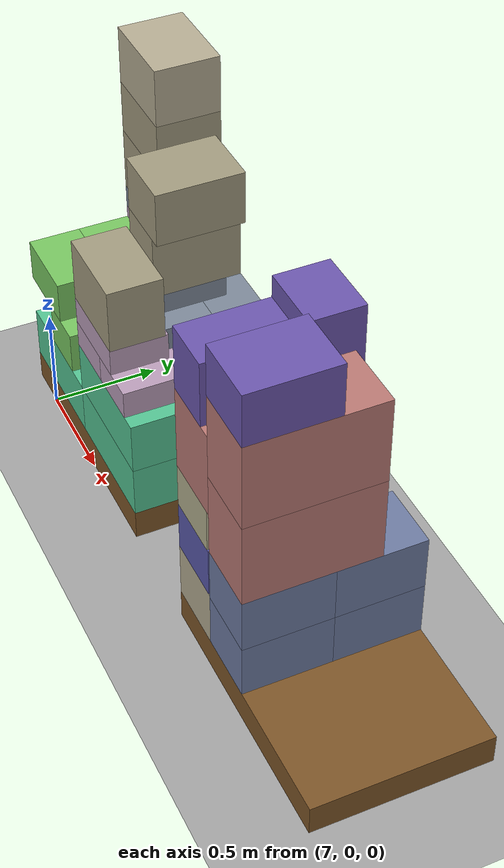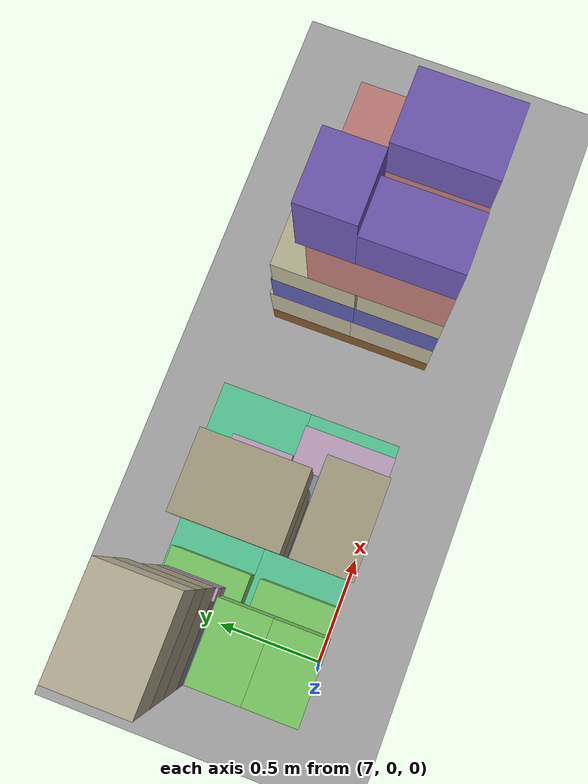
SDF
<sdf version="1.10">
 <world name="pallet_towers">
  <model name="ground_plane">
   <static>true</static>
   <link name="link">
    <collision name="collision">
     <geometry><plane><normal>0 0 1</normal><size>30 30</size></plane></geometry>
     <surface>
      <friction><ode><mu>0.35</mu><mu2>0.35</mu2></ode></friction>
      <bounce><restitution_coefficient>0</restitution_coefficient><threshold>100000</threshold></bounce>
      <contact><ode><kp>1000000</kp><kd>100</kd><max_vel>1</max_vel><min_depth>0.0005</min_depth></ode></contact>
     </surface>
    </collision>
    <visual name="visual">
     <geometry><plane><normal>0 0 1</normal><size>30 30</size></plane></geometry>
     <material><ambient>0.65 0.65 0.65 1</ambient><diffuse>0.65 0.65 0.65 1</diffuse></material>
    </visual>
   </link>
  </model>
  <model name="pallet_05_5">
   <static>false</static>
   <pose>7.4 0.4 0.072 0 0 0</pose>
   <link name="body">
    <inertial>
     <mass>25</mass>
     <inertia>
      <ixx>1.37653333</ixx>
      <ixy>0</ixy>
      <ixz>0</ixz>
      <iyy>3.0432</iyy>
      <iyz>0</iyz>
      <izz>4.33333333</izz>
     </inertia>
    </inertial>
    <collision name="collision">
     <geometry><box><size>1.2 0.8 0.144</size></box></geometry>
     <surface>
      <friction><ode><mu>0.35</mu><mu2>0.35</mu2></ode></friction>
      <bounce><restitution_coefficient>0</restitution_coefficient><threshold>100000</threshold></bounce>
      <contact><ode><kp>1000000</kp><kd>100</kd><max_vel>1</max_vel><min_depth>0.0005</min_depth></ode></contact>
     </surface>
    </collision>
    <visual name="visual">
     <geometry><box><size>1.2 0.8 0.144</size></box></geometry>
     <material>
      <ambient>0.5 0.34 0.16 1</ambient>
      <diffuse>0.5 0.34 0.16 1</diffuse>
      <specular>0.05 0.05 0.05 1</specular>
     </material>
    </visual>
   </link>
  </model>
  <model name="box_p05_0001_DIAPER_001_DIAPER">
   <static>false</static>
   <pose>7.7 0.6 0.269 0 0 0</pose>
   <link name="body">
    <inertial>
     <mass>7</mass>
     <inertia>
      <ixx>0.129791667</ixx>
      <ixy>0</ixy>
      <ixz>0</ixz>
      <iyy>0.246458333</iyy>
      <iyz>0</iyz>
      <izz>0.303333333</izz>
     </inertia>
    </inertial>
    <collision name="collision">
     <geometry><box><size>0.6 0.4 0.25</size></box></geometry>
     <surface>
      <friction><ode><mu>0.35</mu><mu2>0.35</mu2></ode></friction>
      <bounce><restitution_coefficient>0</restitution_coefficient><threshold>100000</threshold></bounce>
      <contact><ode><kp>1000000</kp><kd>100</kd><max_vel>1</max_vel><min_depth>0.0005</min_depth></ode></contact>
     </surface>
    </collision>
    <visual name="visual">
     <geometry><box><size>0.6 0.4 0.25</size></box></geometry>
     <material>
      <ambient>0.337254902 0.780392157 0.584313725 1</ambient>
      <diffuse>0.337254902 0.780392157 0.584313725 1</diffuse>
      <specular>0.05 0.05 0.05 1</specular>
     </material>
    </visual>
   </link>
  </model>
  <model name="box_p05_0002_DIAPER_002_DIAPER">
   <static>false</static>
   <pose>7.7 0.2 0.269 0 0 0</pose>
   <link name="body">
    <inertial>
     <mass>7</mass>
     <inertia>
      <ixx>0.129791667</ixx>
      <ixy>0</ixy>
      <ixz>0</ixz>
      <iyy>0.246458333</iyy>
      <iyz>0</iyz>
      <izz>0.303333333</izz>
     </inertia>
    </inertial>
    <collision name="collision">
     <geometry><box><size>0.6 0.4 0.25</size></box></geometry>
     <surface>
      <friction><ode><mu>0.35</mu><mu2>0.35</mu2></ode></friction>
      <bounce><restitution_coefficient>0</restitution_coefficient><threshold>100000</threshold></bounce>
      <contact><ode><kp>1000000</kp><kd>100</kd><max_vel>1</max_vel><min_depth>0.0005</min_depth></ode></contact>
     </surface>
    </collision>
    <visual name="visual">
     <geometry><box><size>0.6 0.4 0.25</size></box></geometry>
     <material>
      <ambient>0.337254902 0.780392157 0.584313725 1</ambient>
      <diffuse>0.337254902 0.780392157 0.584313725 1</diffuse>
      <specular>0.05 0.05 0.05 1</specular>
     </material>
    </visual>
   </link>
  </model>
  <model name="box_p05_0003_DIAPER_003_DIAPER">
   <static>false</static>
   <pose>7.1 0.6 0.269 0 0 0</pose>
   <link name="body">
    <inertial>
     <mass>7</mass>
     <inertia>
      <ixx>0.129791667</ixx>
      <ixy>0</ixy>
      <ixz>0</ixz>
      <iyy>0.246458333</iyy>
      <iyz>0</iyz>
      <izz>0.303333333</izz>
     </inertia>
    </inertial>
    <collision name="collision">
     <geometry><box><size>0.6 0.4 0.25</size></box></geometry>
     <surface>
      <friction><ode><mu>0.35</mu><mu2>0.35</mu2></ode></friction>
      <bounce><restitution_coefficient>0</restitution_coefficient><threshold>100000</threshold></bounce>
      <contact><ode><kp>1000000</kp><kd>100</kd><max_vel>1</max_vel><min_depth>0.0005</min_depth></ode></contact>
     </surface>
    </collision>
    <visual name="visual">
     <geometry><box><size>0.6 0.4 0.25</size></box></geometry>
     <material>
      <ambient>0.337254902 0.780392157 0.584313725 1</ambient>
      <diffuse>0.337254902 0.780392157 0.584313725 1</diffuse>
      <specular>0.05 0.05 0.05 1</specular>
     </material>
    </visual>
   </link>
  </model>
  <model name="box_p05_0004_DIAPER_004_DIAPER">
   <static>false</static>
   <pose>7.1 0.2 0.269 0 0 0</pose>
   <link name="body">
    <inertial>
     <mass>7</mass>
     <inertia>
      <ixx>0.129791667</ixx>
      <ixy>0</ixy>
      <ixz>0</ixz>
      <iyy>0.246458333</iyy>
      <iyz>0</iyz>
      <izz>0.303333333</izz>
     </inertia>
    </inertial>
    <collision name="collision">
     <geometry><box><size>0.6 0.4 0.25</size></box></geometry>
     <surface>
      <friction><ode><mu>0.35</mu><mu2>0.35</mu2></ode></friction>
      <bounce><restitution_coefficient>0</restitution_coefficient><threshold>100000</threshold></bounce>
      <contact><ode><kp>1000000</kp><kd>100</kd><max_vel>1</max_vel><min_depth>0.0005</min_depth></ode></contact>
     </surface>
    </collision>
    <visual name="visual">
     <geometry><box><size>0.6 0.4 0.25</size></box></geometry>
     <material>
      <ambient>0.337254902 0.780392157 0.584313725 1</ambient>
      <diffuse>0.337254902 0.780392157 0.584313725 1</diffuse>
      <specular>0.05 0.05 0.05 1</specular>
     </material>
    </visual>
   </link>
  </model>
  <model name="box_p05_0005_DIAPER_005_DIAPER">
   <static>false</static>
   <pose>7.7 0.6 0.519 0 0 0</pose>
   <link name="body">
    <inertial>
     <mass>7</mass>
     <inertia>
      <ixx>0.129791667</ixx>
      <ixy>0</ixy>
      <ixz>0</ixz>
      <iyy>0.246458333</iyy>
      <iyz>0</iyz>
      <izz>0.303333333</izz>
     </inertia>
    </inertial>
    <collision name="collision">
     <geometry><box><size>0.6 0.4 0.25</size></box></geometry>
     <surface>
      <friction><ode><mu>0.35</mu><mu2>0.35</mu2></ode></friction>
      <bounce><restitution_coefficient>0</restitution_coefficient><threshold>100000</threshold></bounce>
      <contact><ode><kp>1000000</kp><kd>100</kd><max_vel>1</max_vel><min_depth>0.0005</min_depth></ode></contact>
     </surface>
    </collision>
    <visual name="visual">
     <geometry><box><size>0.6 0.4 0.25</size></box></geometry>
     <material>
      <ambient>0.337254902 0.780392157 0.584313725 1</ambient>
      <diffuse>0.337254902 0.780392157 0.584313725 1</diffuse>
      <specular>0.05 0.05 0.05 1</specular>
     </material>
    </visual>
   </link>
  </model>
  <model name="box_p05_0006_DIAPER_006_DIAPER">
   <static>false</static>
   <pose>7.7 0.2 0.519 0 0 0</pose>
   <link name="body">
    <inertial>
     <mass>7</mass>
     <inertia>
      <ixx>0.129791667</ixx>
      <ixy>0</ixy>
      <ixz>0</ixz>
      <iyy>0.246458333</iyy>
      <iyz>0</iyz>
      <izz>0.303333333</izz>
     </inertia>
    </inertial>
    <collision name="collision">
     <geometry><box><size>0.6 0.4 0.25</size></box></geometry>
     <surface>
      <friction><ode><mu>0.35</mu><mu2>0.35</mu2></ode></friction>
      <bounce><restitution_coefficient>0</restitution_coefficient><threshold>100000</threshold></bounce>
      <contact><ode><kp>1000000</kp><kd>100</kd><max_vel>1</max_vel><min_depth>0.0005</min_depth></ode></contact>
     </surface>
    </collision>
    <visual name="visual">
     <geometry><box><size>0.6 0.4 0.25</size></box></geometry>
     <material>
      <ambient>0.337254902 0.780392157 0.584313725 1</ambient>
      <diffuse>0.337254902 0.780392157 0.584313725 1</diffuse>
      <specular>0.05 0.05 0.05 1</specular>
     </material>
    </visual>
   </link>
  </model>
  <model name="box_p05_0008_TEA_002_TEA">
   <static>false</static>
   <pose>7.16 0.58 0.494 0 0 0</pose>
   <link name="body">
    <inertial>
     <mass>5</mass>
     <inertia>
      <ixx>0.0706666667</ixx>
      <ixy>0</ixy>
      <ixz>0</ixz>
      <iyy>0.0406666667</iyy>
      <iyz>0</iyz>
      <izz>0.078</izz>
     </inertia>
    </inertial>
    <collision name="collision">
     <geometry><box><size>0.24 0.36 0.2</size></box></geometry>
     <surface>
      <friction><ode><mu>0.35</mu><mu2>0.35</mu2></ode></friction>
      <bounce><restitution_coefficient>0</restitution_coefficient><threshold>100000</threshold></bounce>
      <contact><ode><kp>1000000</kp><kd>100</kd><max_vel>1</max_vel><min_depth>0.0005</min_depth></ode></contact>
     </surface>
    </collision>
    <visual name="visual">
     <geometry><box><size>0.24 0.36 0.2</size></box></geometry>
     <material>
      <ambient>0.478431373 0.788235294 0.388235294 1</ambient>
      <diffuse>0.478431373 0.788235294 0.388235294 1</diffuse>
      <specular>0.05 0.05 0.05 1</specular>
     </material>
    </visual>
   </link>
  </model>
  <model name="box_p05_0010_TEA_004_TEA">
   <static>false</static>
   <pose>7.16 0.18 0.494 0 0 0</pose>
   <link name="body">
    <inertial>
     <mass>5</mass>
     <inertia>
      <ixx>0.0706666667</ixx>
      <ixy>0</ixy>
      <ixz>0</ixz>
      <iyy>0.0406666667</iyy>
      <iyz>0</iyz>
      <izz>0.078</izz>
     </inertia>
    </inertial>
    <collision name="collision">
     <geometry><box><size>0.24 0.36 0.2</size></box></geometry>
     <surface>
      <friction><ode><mu>0.35</mu><mu2>0.35</mu2></ode></friction>
      <bounce><restitution_coefficient>0</restitution_coefficient><threshold>100000</threshold></bounce>
      <contact><ode><kp>1000000</kp><kd>100</kd><max_vel>1</max_vel><min_depth>0.0005</min_depth></ode></contact>
     </surface>
    </collision>
    <visual name="visual">
     <geometry><box><size>0.24 0.36 0.2</size></box></geometry>
     <material>
      <ambient>0.478431373 0.788235294 0.388235294 1</ambient>
      <diffuse>0.478431373 0.788235294 0.388235294 1</diffuse>
      <specular>0.05 0.05 0.05 1</specular>
     </material>
    </visual>
   </link>
  </model>
  <model name="box_p05_0011_TEA_005_TEA">
   <static>false</static>
   <pose>6.98 0.12 0.694 0 0 0</pose>
   <link name="body">
    <inertial>
     <mass>5</mass>
     <inertia>
      <ixx>0.0406666667</ixx>
      <ixy>0</ixy>
      <ixz>0</ixz>
      <iyy>0.0706666667</iyy>
      <iyz>0</iyz>
      <izz>0.078</izz>
     </inertia>
    </inertial>
    <collision name="collision">
     <geometry><box><size>0.36 0.24 0.2</size></box></geometry>
     <surface>
      <friction><ode><mu>0.35</mu><mu2>0.35</mu2></ode></friction>
      <bounce><restitution_coefficient>0</restitution_coefficient><threshold>100000</threshold></bounce>
      <contact><ode><kp>1000000</kp><kd>100</kd><max_vel>1</max_vel><min_depth>0.0005</min_depth></ode></contact>
     </surface>
    </collision>
    <visual name="visual">
     <geometry><box><size>0.36 0.24 0.2</size></box></geometry>
     <material>
      <ambient>0.478431373 0.788235294 0.388235294 1</ambient>
      <diffuse>0.478431373 0.788235294 0.388235294 1</diffuse>
      <specular>0.05 0.05 0.05 1</specular>
     </material>
    </visual>
   </link>
  </model>
  <model name="box_p05_0012_TEA_006_TEA">
   <static>false</static>
   <pose>6.98 0.36 0.694 0 0 0</pose>
   <link name="body">
    <inertial>
     <mass>5</mass>
     <inertia>
      <ixx>0.0406666667</ixx>
      <ixy>0</ixy>
      <ixz>0</ixz>
      <iyy>0.0706666667</iyy>
      <iyz>0</iyz>
      <izz>0.078</izz>
     </inertia>
    </inertial>
    <collision name="collision">
     <geometry><box><size>0.36 0.24 0.2</size></box></geometry>
     <surface>
      <friction><ode><mu>0.35</mu><mu2>0.35</mu2></ode></friction>
      <bounce><restitution_coefficient>0</restitution_coefficient><threshold>100000</threshold></bounce>
      <contact><ode><kp>1000000</kp><kd>100</kd><max_vel>1</max_vel><min_depth>0.0005</min_depth></ode></contact>
     </surface>
    </collision>
    <visual name="visual">
     <geometry><box><size>0.36 0.24 0.2</size></box></geometry>
     <material>
      <ambient>0.478431373 0.788235294 0.388235294 1</ambient>
      <diffuse>0.478431373 0.788235294 0.388235294 1</diffuse>
      <specular>0.05 0.05 0.05 1</specular>
     </material>
    </visual>
   </link>
  </model>
  <model name="box_p05_0013_BEER24_001_BEER24">
   <static>false</static>
   <pose>6.9975 0.6125 0.659 0 0 0</pose>
   <link name="body">
    <inertial>
     <mass>9</mass>
     <inertia>
      <ixx>0.06534375</ixx>
      <ixy>0</ixy>
      <ixz>0</ixz>
      <iyy>0.12969375</iyy>
      <iyz>0</iyz>
      <izz>0.1696875</izz>
     </inertia>
    </inertial>
    <collision name="collision">
     <geometry><box><size>0.395 0.265 0.13</size></box></geometry>
     <surface>
      <friction><ode><mu>0.35</mu><mu2>0.35</mu2></ode></friction>
      <bounce><restitution_coefficient>0</restitution_coefficient><threshold>100000</threshold></bounce>
      <contact><ode><kp>1000000</kp><kd>100</kd><max_vel>1</max_vel><min_depth>0.0005</min_depth></ode></contact>
     </surface>
    </collision>
    <visual name="visual">
     <geometry><box><size>0.395 0.265 0.13</size></box></geometry>
     <material>
      <ambient>0.741176471 0.62745098 0.737254902 1</ambient>
      <diffuse>0.741176471 0.62745098 0.737254902 1</diffuse>
      <specular>0.05 0.05 0.05 1</specular>
     </material>
    </visual>
   </link>
  </model>
  <model name="box_p05_0014_BEER24_002_BEER24">
   <static>false</static>
   <pose>7.5325 0.1975 0.709 0 0 0</pose>
   <link name="body">
    <inertial>
     <mass>9</mass>
     <inertia>
      <ixx>0.12969375</ixx>
      <ixy>0</ixy>
      <ixz>0</ixz>
      <iyy>0.06534375</iyy>
      <iyz>0</iyz>
      <izz>0.1696875</izz>
     </inertia>
    </inertial>
    <collision name="collision">
     <geometry><box><size>0.265 0.395 0.13</size></box></geometry>
     <surface>
      <friction><ode><mu>0.35</mu><mu2>0.35</mu2></ode></friction>
      <bounce><restitution_coefficient>0</restitution_coefficient><threshold>100000</threshold></bounce>
      <contact><ode><kp>1000000</kp><kd>100</kd><max_vel>1</max_vel><min_depth>0.0005</min_depth></ode></contact>
     </surface>
    </collision>
    <visual name="visual">
     <geometry><box><size>0.265 0.395 0.13</size></box></geometry>
     <material>
      <ambient>0.741176471 0.62745098 0.737254902 1</ambient>
      <diffuse>0.741176471 0.62745098 0.737254902 1</diffuse>
      <specular>0.05 0.05 0.05 1</specular>
     </material>
    </visual>
   </link>
  </model>
  <model name="box_p05_0015_BEER24_003_BEER24">
   <static>false</static>
   <pose>7.7975 0.1975 0.709 0 0 0</pose>
   <link name="body">
    <inertial>
     <mass>9</mass>
     <inertia>
      <ixx>0.12969375</ixx>
      <ixy>0</ixy>
      <ixz>0</ixz>
      <iyy>0.06534375</iyy>
      <iyz>0</iyz>
      <izz>0.1696875</izz>
     </inertia>
    </inertial>
    <collision name="collision">
     <geometry><box><size>0.265 0.395 0.13</size></box></geometry>
     <surface>
      <friction><ode><mu>0.35</mu><mu2>0.35</mu2></ode></friction>
      <bounce><restitution_coefficient>0</restitution_coefficient><threshold>100000</threshold></bounce>
      <contact><ode><kp>1000000</kp><kd>100</kd><max_vel>1</max_vel><min_depth>0.0005</min_depth></ode></contact>
     </surface>
    </collision>
    <visual name="visual">
     <geometry><box><size>0.265 0.395 0.13</size></box></geometry>
     <material>
      <ambient>0.741176471 0.62745098 0.737254902 1</ambient>
      <diffuse>0.741176471 0.62745098 0.737254902 1</diffuse>
      <specular>0.05 0.05 0.05 1</specular>
     </material>
    </visual>
   </link>
  </model>
  <model name="box_p05_0016_BEER24_004_BEER24">
   <static>false</static>
   <pose>7.5975 0.5325 0.709 0 0 0</pose>
   <link name="body">
    <inertial>
     <mass>9</mass>
     <inertia>
      <ixx>0.06534375</ixx>
      <ixy>0</ixy>
      <ixz>0</ixz>
      <iyy>0.12969375</iyy>
      <iyz>0</iyz>
      <izz>0.1696875</izz>
     </inertia>
    </inertial>
    <collision name="collision">
     <geometry><box><size>0.395 0.265 0.13</size></box></geometry>
     <surface>
      <friction><ode><mu>0.35</mu><mu2>0.35</mu2></ode></friction>
      <bounce><restitution_coefficient>0</restitution_coefficient><threshold>100000</threshold></bounce>
      <contact><ode><kp>1000000</kp><kd>100</kd><max_vel>1</max_vel><min_depth>0.0005</min_depth></ode></contact>
     </surface>
    </collision>
    <visual name="visual">
     <geometry><box><size>0.395 0.265 0.13</size></box></geometry>
     <material>
      <ambient>0.741176471 0.62745098 0.737254902 1</ambient>
      <diffuse>0.741176471 0.62745098 0.737254902 1</diffuse>
      <specular>0.05 0.05 0.05 1</specular>
     </material>
    </visual>
   </link>
  </model>
  <model name="box_p05_0017_BEER24_005_BEER24">
   <static>false</static>
   <pose>6.9975 0.6125 0.789 0 0 0</pose>
   <link name="body">
    <inertial>
     <mass>9</mass>
     <inertia>
      <ixx>0.06534375</ixx>
      <ixy>0</ixy>
      <ixz>0</ixz>
      <iyy>0.12969375</iyy>
      <iyz>0</iyz>
      <izz>0.1696875</izz>
     </inertia>
    </inertial>
    <collision name="collision">
     <geometry><box><size>0.395 0.265 0.13</size></box></geometry>
     <surface>
      <friction><ode><mu>0.35</mu><mu2>0.35</mu2></ode></friction>
      <bounce><restitution_coefficient>0</restitution_coefficient><threshold>100000</threshold></bounce>
      <contact><ode><kp>1000000</kp><kd>100</kd><max_vel>1</max_vel><min_depth>0.0005</min_depth></ode></contact>
     </surface>
    </collision>
    <visual name="visual">
     <geometry><box><size>0.395 0.265 0.13</size></box></geometry>
     <material>
      <ambient>0.741176471 0.62745098 0.737254902 1</ambient>
      <diffuse>0.741176471 0.62745098 0.737254902 1</diffuse>
      <specular>0.05 0.05 0.05 1</specular>
     </material>
    </visual>
   </link>
  </model>
  <model name="box_p05_0018_BEER24_006_BEER24">
   <static>false</static>
   <pose>7.5975 0.1325 0.839 0 0 0</pose>
   <link name="body">
    <inertial>
     <mass>9</mass>
     <inertia>
      <ixx>0.06534375</ixx>
      <ixy>0</ixy>
      <ixz>0</ixz>
      <iyy>0.12969375</iyy>
      <iyz>0</iyz>
      <izz>0.1696875</izz>
     </inertia>
    </inertial>
    <collision name="collision">
     <geometry><box><size>0.395 0.265 0.13</size></box></geometry>
     <surface>
      <friction><ode><mu>0.35</mu><mu2>0.35</mu2></ode></friction>
      <bounce><restitution_coefficient>0</restitution_coefficient><threshold>100000</threshold></bounce>
      <contact><ode><kp>1000000</kp><kd>100</kd><max_vel>1</max_vel><min_depth>0.0005</min_depth></ode></contact>
     </surface>
    </collision>
    <visual name="visual">
     <geometry><box><size>0.395 0.265 0.13</size></box></geometry>
     <material>
      <ambient>0.741176471 0.62745098 0.737254902 1</ambient>
      <diffuse>0.741176471 0.62745098 0.737254902 1</diffuse>
      <specular>0.05 0.05 0.05 1</specular>
     </material>
    </visual>
   </link>
  </model>
  <model name="box_p05_0020_DOGFOOD_002_DOGFOOD">
   <static>false</static>
   <pose>7.57 0.38 0.829 0 0 0</pose>
   <link name="body">
    <inertial>
     <mass>8</mass>
     <inertia>
      <ixx>0.0433333333</ixx>
      <ixy>0</ixy>
      <ixz>0</ixz>
      <iyy>0.0851333333</iyy>
      <iyz>0</iyz>
      <izz>0.112333333</izz>
     </inertia>
    </inertial>
    <collision name="collision">
     <geometry><box><size>0.34 0.23 0.11</size></box></geometry>
     <surface>
      <friction><ode><mu>0.35</mu><mu2>0.35</mu2></ode></friction>
      <bounce><restitution_coefficient>0</restitution_coefficient><threshold>100000</threshold></bounce>
      <contact><ode><kp>1000000</kp><kd>100</kd><max_vel>1</max_vel><min_depth>0.0005</min_depth></ode></contact>
     </surface>
    </collision>
    <visual name="visual">
     <geometry><box><size>0.34 0.23 0.11</size></box></geometry>
     <material>
      <ambient>0.498039216 0.545098039 0.607843137 1</ambient>
      <diffuse>0.498039216 0.545098039 0.607843137 1</diffuse>
      <specular>0.05 0.05 0.05 1</specular>
     </material>
    </visual>
   </link>
  </model>
  <model name="box_p05_0021_DOGFOOD_003_DOGFOOD">
   <static>false</static>
   <pose>7.57 0.61 0.829 0 0 0</pose>
   <link name="body">
    <inertial>
     <mass>8</mass>
     <inertia>
      <ixx>0.0433333333</ixx>
      <ixy>0</ixy>
      <ixz>0</ixz>
      <iyy>0.0851333333</iyy>
      <iyz>0</iyz>
      <izz>0.112333333</izz>
     </inertia>
    </inertial>
    <collision name="collision">
     <geometry><box><size>0.34 0.23 0.11</size></box></geometry>
     <surface>
      <friction><ode><mu>0.35</mu><mu2>0.35</mu2></ode></friction>
      <bounce><restitution_coefficient>0</restitution_coefficient><threshold>100000</threshold></bounce>
      <contact><ode><kp>1000000</kp><kd>100</kd><max_vel>1</max_vel><min_depth>0.0005</min_depth></ode></contact>
     </surface>
    </collision>
    <visual name="visual">
     <geometry><box><size>0.34 0.23 0.11</size></box></geometry>
     <material>
      <ambient>0.498039216 0.545098039 0.607843137 1</ambient>
      <diffuse>0.498039216 0.545098039 0.607843137 1</diffuse>
      <specular>0.05 0.05 0.05 1</specular>
     </material>
    </visual>
   </link>
  </model>
  <model name="box_p05_0022_DOGFOOD_004_DOGFOOD">
   <static>false</static>
   <pose>6.97 0.595 0.909 0 0 0</pose>
   <link name="body">
    <inertial>
     <mass>8</mass>
     <inertia>
      <ixx>0.0433333333</ixx>
      <ixy>0</ixy>
      <ixz>0</ixz>
      <iyy>0.0851333333</iyy>
      <iyz>0</iyz>
      <izz>0.112333333</izz>
     </inertia>
    </inertial>
    <collision name="collision">
     <geometry><box><size>0.34 0.23 0.11</size></box></geometry>
     <surface>
      <friction><ode><mu>0.35</mu><mu2>0.35</mu2></ode></friction>
      <bounce><restitution_coefficient>0</restitution_coefficient><threshold>100000</threshold></bounce>
      <contact><ode><kp>1000000</kp><kd>100</kd><max_vel>1</max_vel><min_depth>0.0005</min_depth></ode></contact>
     </surface>
    </collision>
    <visual name="visual">
     <geometry><box><size>0.34 0.23 0.11</size></box></geometry>
     <material>
      <ambient>0.498039216 0.545098039 0.607843137 1</ambient>
      <diffuse>0.498039216 0.545098039 0.607843137 1</diffuse>
      <specular>0.05 0.05 0.05 1</specular>
     </material>
    </visual>
   </link>
  </model>
  <model name="box_p05_0023_DOGFOOD_005_DOGFOOD">
   <static>false</static>
   <pose>7.515 0.435 0.939 0 0 0</pose>
   <link name="body">
    <inertial>
     <mass>8</mass>
     <inertia>
      <ixx>0.0851333333</ixx>
      <ixy>0</ixy>
      <ixz>0</ixz>
      <iyy>0.0433333333</iyy>
      <iyz>0</iyz>
      <izz>0.112333333</izz>
     </inertia>
    </inertial>
    <collision name="collision">
     <geometry><box><size>0.23 0.34 0.11</size></box></geometry>
     <surface>
      <friction><ode><mu>0.35</mu><mu2>0.35</mu2></ode></friction>
      <bounce><restitution_coefficient>0</restitution_coefficient><threshold>100000</threshold></bounce>
      <contact><ode><kp>1000000</kp><kd>100</kd><max_vel>1</max_vel><min_depth>0.0005</min_depth></ode></contact>
     </surface>
    </collision>
    <visual name="visual">
     <geometry><box><size>0.23 0.34 0.11</size></box></geometry>
     <material>
      <ambient>0.498039216 0.545098039 0.607843137 1</ambient>
      <diffuse>0.498039216 0.545098039 0.607843137 1</diffuse>
      <specular>0.05 0.05 0.05 1</specular>
     </material>
    </visual>
   </link>
  </model>
  <model name="box_p05_0025_MILK12_001_MILK12">
   <static>false</static>
   <pose>7.6 0.125 1.054 0 0 0</pose>
   <link name="body">
    <inertial>
     <mass>12.5</mass>
     <inertia>
      <ixx>0.158854167</ixx>
      <ixy>0</ixy>
      <ixz>0</ixz>
      <iyy>0.260416667</iyy>
      <iyz>0</iyz>
      <izz>0.231770833</izz>
     </inertia>
    </inertial>
    <collision name="collision">
     <geometry><box><size>0.4 0.25 0.3</size></box></geometry>
     <surface>
      <friction><ode><mu>0.35</mu><mu2>0.35</mu2></ode></friction>
      <bounce><restitution_coefficient>0</restitution_coefficient><threshold>100000</threshold></bounce>
      <contact><ode><kp>1000000</kp><kd>100</kd><max_vel>1</max_vel><min_depth>0.0005</min_depth></ode></contact>
     </surface>
    </collision>
    <visual name="visual">
     <geometry><box><size>0.4 0.25 0.3</size></box></geometry>
     <material>
      <ambient>0.647058824 0.615686275 0.505882353 1</ambient>
      <diffuse>0.647058824 0.615686275 0.505882353 1</diffuse>
      <specular>0.05 0.05 0.05 1</specular>
     </material>
    </visual>
   </link>
  </model>
  <model name="box_p05_0026_MILK12_002_MILK12">
   <static>false</static>
   <pose>7 0.605 1.114 0 0 0</pose>
   <link name="body">
    <inertial>
     <mass>12.5</mass>
     <inertia>
      <ixx>0.158854167</ixx>
      <ixy>0</ixy>
      <ixz>0</ixz>
      <iyy>0.260416667</iyy>
      <iyz>0</iyz>
      <izz>0.231770833</izz>
     </inertia>
    </inertial>
    <collision name="collision">
     <geometry><box><size>0.4 0.25 0.3</size></box></geometry>
     <surface>
      <friction><ode><mu>0.35</mu><mu2>0.35</mu2></ode></friction>
      <bounce><restitution_coefficient>0</restitution_coefficient><threshold>100000</threshold></bounce>
      <contact><ode><kp>1000000</kp><kd>100</kd><max_vel>1</max_vel><min_depth>0.0005</min_depth></ode></contact>
     </surface>
    </collision>
    <visual name="visual">
     <geometry><box><size>0.4 0.25 0.3</size></box></geometry>
     <material>
      <ambient>0.647058824 0.615686275 0.505882353 1</ambient>
      <diffuse>0.647058824 0.615686275 0.505882353 1</diffuse>
      <specular>0.05 0.05 0.05 1</specular>
     </material>
    </visual>
   </link>
  </model>
  <model name="box_p05_0027_MILK12_003_MILK12">
   <static>false</static>
   <pose>7.525 0.465 1.144 0 0 0</pose>
   <link name="body">
    <inertial>
     <mass>12.5</mass>
     <inertia>
      <ixx>0.260416667</ixx>
      <ixy>0</ixy>
      <ixz>0</ixz>
      <iyy>0.158854167</iyy>
      <iyz>0</iyz>
      <izz>0.231770833</izz>
     </inertia>
    </inertial>
    <collision name="collision">
     <geometry><box><size>0.25 0.4 0.3</size></box></geometry>
     <surface>
      <friction><ode><mu>0.35</mu><mu2>0.35</mu2></ode></friction>
      <bounce><restitution_coefficient>0</restitution_coefficient><threshold>100000</threshold></bounce>
      <contact><ode><kp>1000000</kp><kd>100</kd><max_vel>1</max_vel><min_depth>0.0005</min_depth></ode></contact>
     </surface>
    </collision>
    <visual name="visual">
     <geometry><box><size>0.25 0.4 0.3</size></box></geometry>
     <material>
      <ambient>0.647058824 0.615686275 0.505882353 1</ambient>
      <diffuse>0.647058824 0.615686275 0.505882353 1</diffuse>
      <specular>0.05 0.05 0.05 1</specular>
     </material>
    </visual>
   </link>
  </model>
  <model name="box_p05_0029_MILK12_005_MILK12">
   <static>false</static>
   <pose>7 0.63 1.389 0 0 0</pose>
   <link name="body">
    <inertial>
     <mass>12.5</mass>
     <inertia>
      <ixx>0.158854167</ixx>
      <ixy>0</ixy>
      <ixz>0</ixz>
      <iyy>0.231770833</iyy>
      <iyz>0</iyz>
      <izz>0.260416667</izz>
     </inertia>
    </inertial>
    <collision name="collision">
     <geometry><box><size>0.4 0.3 0.25</size></box></geometry>
     <surface>
      <friction><ode><mu>0.35</mu><mu2>0.35</mu2></ode></friction>
      <bounce><restitution_coefficient>0</restitution_coefficient><threshold>100000</threshold></bounce>
      <contact><ode><kp>1000000</kp><kd>100</kd><max_vel>1</max_vel><min_depth>0.0005</min_depth></ode></contact>
     </surface>
    </collision>
    <visual name="visual">
     <geometry><box><size>0.4 0.3 0.25</size></box></geometry>
     <material>
      <ambient>0.647058824 0.615686275 0.505882353 1</ambient>
      <diffuse>0.647058824 0.615686275 0.505882353 1</diffuse>
      <specular>0.05 0.05 0.05 1</specular>
     </material>
    </visual>
   </link>
  </model>
  <model name="box_p05_0030_MILK12_006_MILK12">
   <static>false</static>
   <pose>7.55 0.465 1.419 0 0 0</pose>
   <link name="body">
    <inertial>
     <mass>12.5</mass>
     <inertia>
      <ixx>0.231770833</ixx>
      <ixy>0</ixy>
      <ixz>0</ixz>
      <iyy>0.158854167</iyy>
      <iyz>0</iyz>
      <izz>0.260416667</izz>
     </inertia>
    </inertial>
    <collision name="collision">
     <geometry><box><size>0.3 0.4 0.25</size></box></geometry>
     <surface>
      <friction><ode><mu>0.35</mu><mu2>0.35</mu2></ode></friction>
      <bounce><restitution_coefficient>0</restitution_coefficient><threshold>100000</threshold></bounce>
      <contact><ode><kp>1000000</kp><kd>100</kd><max_vel>1</max_vel><min_depth>0.0005</min_depth></ode></contact>
     </surface>
    </collision>
    <visual name="visual">
     <geometry><box><size>0.3 0.4 0.25</size></box></geometry>
     <material>
      <ambient>0.647058824 0.615686275 0.505882353 1</ambient>
      <diffuse>0.647058824 0.615686275 0.505882353 1</diffuse>
      <specular>0.05 0.05 0.05 1</specular>
     </material>
    </visual>
   </link>
  </model>
  <model name="box_p05_0032_WATER24_002_WATER24">
   <static>false</static>
   <pose>7 0.63 1.649 0 0 0</pose>
   <link name="body">
    <inertial>
     <mass>13</mass>
     <inertia>
      <ixx>0.176475</ixx>
      <ixy>0</ixy>
      <ixz>0</ixz>
      <iyy>0.252308333</iyy>
      <iyz>0</iyz>
      <izz>0.270833333</izz>
     </inertia>
    </inertial>
    <collision name="collision">
     <geometry><box><size>0.4 0.3 0.27</size></box></geometry>
     <surface>
      <friction><ode><mu>0.35</mu><mu2>0.35</mu2></ode></friction>
      <bounce><restitution_coefficient>0</restitution_coefficient><threshold>100000</threshold></bounce>
      <contact><ode><kp>1000000</kp><kd>100</kd><max_vel>1</max_vel><min_depth>0.0005</min_depth></ode></contact>
     </surface>
    </collision>
    <visual name="visual">
     <geometry><box><size>0.4 0.3 0.27</size></box></geometry>
     <material>
      <ambient>0.721568627 0.68627451 0.584313725 1</ambient>
      <diffuse>0.721568627 0.68627451 0.584313725 1</diffuse>
      <specular>0.05 0.05 0.05 1</specular>
     </material>
    </visual>
   </link>
  </model>
  <model name="pallet_06_6">
   <static>false</static>
   <pose>9.1 0.4 0.072 0 0 0</pose>
   <link name="body">
    <inertial>
     <mass>25</mass>
     <inertia>
      <ixx>1.37653333</ixx>
      <ixy>0</ixy>
      <ixz>0</ixz>
      <iyy>3.0432</iyy>
      <iyz>0</iyz>
      <izz>4.33333333</izz>
     </inertia>
    </inertial>
    <collision name="collision">
     <geometry><box><size>1.2 0.8 0.144</size></box></geometry>
     <surface>
      <friction><ode><mu>0.35</mu><mu2>0.35</mu2></ode></friction>
      <bounce><restitution_coefficient>0</restitution_coefficient><threshold>100000</threshold></bounce>
      <contact><ode><kp>1000000</kp><kd>100</kd><max_vel>1</max_vel><min_depth>0.0005</min_depth></ode></contact>
     </surface>
    </collision>
    <visual name="visual">
     <geometry><box><size>1.2 0.8 0.144</size></box></geometry>
     <material>
      <ambient>0.5 0.34 0.16 1</ambient>
      <diffuse>0.5 0.34 0.16 1</diffuse>
      <specular>0.05 0.05 0.05 1</specular>
     </material>
    </visual>
   </link>
  </model>
  <model name="box_p06_0003_WATER24_005_WATER24">
   <static>false</static>
   <pose>8.65 0.6 0.279 0 0 0</pose>
   <link name="body">
    <inertial>
     <mass>13</mass>
     <inertia>
      <ixx>0.252308333</ixx>
      <ixy>0</ixy>
      <ixz>0</ixz>
      <iyy>0.176475</iyy>
      <iyz>0</iyz>
      <izz>0.270833333</izz>
     </inertia>
    </inertial>
    <collision name="collision">
     <geometry><box><size>0.3 0.4 0.27</size></box></geometry>
     <surface>
      <friction><ode><mu>0.35</mu><mu2>0.35</mu2></ode></friction>
      <bounce><restitution_coefficient>0</restitution_coefficient><threshold>100000</threshold></bounce>
      <contact><ode><kp>1000000</kp><kd>100</kd><max_vel>1</max_vel><min_depth>0.0005</min_depth></ode></contact>
     </surface>
    </collision>
    <visual name="visual">
     <geometry><box><size>0.3 0.4 0.27</size></box></geometry>
     <material>
      <ambient>0.721568627 0.68627451 0.584313725 1</ambient>
      <diffuse>0.721568627 0.68627451 0.584313725 1</diffuse>
      <specular>0.05 0.05 0.05 1</specular>
     </material>
    </visual>
   </link>
  </model>
  <model name="box_p06_0004_WATER24_006_WATER24">
   <static>false</static>
   <pose>8.65 0.2 0.279 0 0 0</pose>
   <link name="body">
    <inertial>
     <mass>13</mass>
     <inertia>
      <ixx>0.252308333</ixx>
      <ixy>0</ixy>
      <ixz>0</ixz>
      <iyy>0.176475</iyy>
      <iyz>0</iyz>
      <izz>0.270833333</izz>
     </inertia>
    </inertial>
    <collision name="collision">
     <geometry><box><size>0.3 0.4 0.27</size></box></geometry>
     <surface>
      <friction><ode><mu>0.35</mu><mu2>0.35</mu2></ode></friction>
      <bounce><restitution_coefficient>0</restitution_coefficient><threshold>100000</threshold></bounce>
      <contact><ode><kp>1000000</kp><kd>100</kd><max_vel>1</max_vel><min_depth>0.0005</min_depth></ode></contact>
     </surface>
    </collision>
    <visual name="visual">
     <geometry><box><size>0.3 0.4 0.27</size></box></geometry>
     <material>
      <ambient>0.721568627 0.68627451 0.584313725 1</ambient>
      <diffuse>0.721568627 0.68627451 0.584313725 1</diffuse>
      <specular>0.05 0.05 0.05 1</specular>
     </material>
    </visual>
   </link>
  </model>
  <model name="box_p06_0006_COLA24_002_COLA24">
   <static>false</static>
   <pose>8.95 0.2 0.274 0 0 0</pose>
   <link name="body">
    <inertial>
     <mass>13.5</mass>
     <inertia><ixx>0.25605</ixx><ixy>0</ixy><ixz>0</ixz><iyy>0.1773</iyy><iyz>0</iyz><izz>0.28125</izz></inertia>
    </inertial>
    <collision name="collision">
     <geometry><box><size>0.3 0.4 0.26</size></box></geometry>
     <surface>
      <friction><ode><mu>0.35</mu><mu2>0.35</mu2></ode></friction>
      <bounce><restitution_coefficient>0</restitution_coefficient><threshold>100000</threshold></bounce>
      <contact><ode><kp>1000000</kp><kd>100</kd><max_vel>1</max_vel><min_depth>0.0005</min_depth></ode></contact>
     </surface>
    </collision>
    <visual name="visual">
     <geometry><box><size>0.3 0.4 0.26</size></box></geometry>
     <material>
      <ambient>0.439215686 0.494117647 0.647058824 1</ambient>
      <diffuse>0.439215686 0.494117647 0.647058824 1</diffuse>
      <specular>0.05 0.05 0.05 1</specular>
     </material>
    </visual>
   </link>
  </model>
  <model name="box_p06_0007_COLA24_003_COLA24">
   <static>false</static>
   <pose>8.95 0.6 0.274 0 0 0</pose>
   <link name="body">
    <inertial>
     <mass>13.5</mass>
     <inertia><ixx>0.25605</ixx><ixy>0</ixy><ixz>0</ixz><iyy>0.1773</iyy><iyz>0</iyz><izz>0.28125</izz></inertia>
    </inertial>
    <collision name="collision">
     <geometry><box><size>0.3 0.4 0.26</size></box></geometry>
     <surface>
      <friction><ode><mu>0.35</mu><mu2>0.35</mu2></ode></friction>
      <bounce><restitution_coefficient>0</restitution_coefficient><threshold>100000</threshold></bounce>
      <contact><ode><kp>1000000</kp><kd>100</kd><max_vel>1</max_vel><min_depth>0.0005</min_depth></ode></contact>
     </surface>
    </collision>
    <visual name="visual">
     <geometry><box><size>0.3 0.4 0.26</size></box></geometry>
     <material>
      <ambient>0.439215686 0.494117647 0.647058824 1</ambient>
      <diffuse>0.439215686 0.494117647 0.647058824 1</diffuse>
      <specular>0.05 0.05 0.05 1</specular>
     </material>
    </visual>
   </link>
  </model>
  <model name="box_p06_0009_COLA24_005_COLA24">
   <static>false</static>
   <pose>8.95 0.2 0.534 0 0 0</pose>
   <link name="body">
    <inertial>
     <mass>13.5</mass>
     <inertia><ixx>0.25605</ixx><ixy>0</ixy><ixz>0</ixz><iyy>0.1773</iyy><iyz>0</iyz><izz>0.28125</izz></inertia>
    </inertial>
    <collision name="collision">
     <geometry><box><size>0.3 0.4 0.26</size></box></geometry>
     <surface>
      <friction><ode><mu>0.35</mu><mu2>0.35</mu2></ode></friction>
      <bounce><restitution_coefficient>0</restitution_coefficient><threshold>100000</threshold></bounce>
      <contact><ode><kp>1000000</kp><kd>100</kd><max_vel>1</max_vel><min_depth>0.0005</min_depth></ode></contact>
     </surface>
    </collision>
    <visual name="visual">
     <geometry><box><size>0.3 0.4 0.26</size></box></geometry>
     <material>
      <ambient>0.439215686 0.494117647 0.647058824 1</ambient>
      <diffuse>0.439215686 0.494117647 0.647058824 1</diffuse>
      <specular>0.05 0.05 0.05 1</specular>
     </material>
    </visual>
   </link>
  </model>
  <model name="box_p06_0010_COLA24_006_COLA24">
   <static>false</static>
   <pose>8.95 0.6 0.534 0 0 0</pose>
   <link name="body">
    <inertial>
     <mass>13.5</mass>
     <inertia><ixx>0.25605</ixx><ixy>0</ixy><ixz>0</ixz><iyy>0.1773</iyy><iyz>0</iyz><izz>0.28125</izz></inertia>
    </inertial>
    <collision name="collision">
     <geometry><box><size>0.3 0.4 0.26</size></box></geometry>
     <surface>
      <friction><ode><mu>0.35</mu><mu2>0.35</mu2></ode></friction>
      <bounce><restitution_coefficient>0</restitution_coefficient><threshold>100000</threshold></bounce>
      <contact><ode><kp>1000000</kp><kd>100</kd><max_vel>1</max_vel><min_depth>0.0005</min_depth></ode></contact>
     </surface>
    </collision>
    <visual name="visual">
     <geometry><box><size>0.3 0.4 0.26</size></box></geometry>
     <material>
      <ambient>0.439215686 0.494117647 0.647058824 1</ambient>
      <diffuse>0.439215686 0.494117647 0.647058824 1</diffuse>
      <specular>0.05 0.05 0.05 1</specular>
     </material>
    </visual>
   </link>
  </model>
  <model name="box_p06_0015_PASTA_005_PASTA">
   <static>false</static>
   <pose>8.645 0.195 0.534 0 0 0</pose>
   <link name="body">
    <inertial>
     <mass>8</mass>
     <inertia>
      <ixx>0.1398</ixx>
      <ixy>0</ixy>
      <ixz>0</ixz>
      <iyy>0.0944666667</iyy>
      <iyz>0</iyz>
      <izz>0.157466667</izz>
     </inertia>
    </inertial>
    <collision name="collision">
     <geometry><box><size>0.29 0.39 0.24</size></box></geometry>
     <surface>
      <friction><ode><mu>0.35</mu><mu2>0.35</mu2></ode></friction>
      <bounce><restitution_coefficient>0</restitution_coefficient><threshold>100000</threshold></bounce>
      <contact><ode><kp>1000000</kp><kd>100</kd><max_vel>1</max_vel><min_depth>0.0005</min_depth></ode></contact>
     </surface>
    </collision>
    <visual name="visual">
     <geometry><box><size>0.29 0.39 0.24</size></box></geometry>
     <material>
      <ambient>0.356862745 0.356862745 0.682352941 1</ambient>
      <diffuse>0.356862745 0.356862745 0.682352941 1</diffuse>
      <specular>0.05 0.05 0.05 1</specular>
     </material>
    </visual>
   </link>
  </model>
  <model name="box_p06_0016_PASTA_006_PASTA">
   <static>false</static>
   <pose>8.645 0.585 0.534 0 0 0</pose>
   <link name="body">
    <inertial>
     <mass>8</mass>
     <inertia>
      <ixx>0.1398</ixx>
      <ixy>0</ixy>
      <ixz>0</ixz>
      <iyy>0.0944666667</iyy>
      <iyz>0</iyz>
      <izz>0.157466667</izz>
     </inertia>
    </inertial>
    <collision name="collision">
     <geometry><box><size>0.29 0.39 0.24</size></box></geometry>
     <surface>
      <friction><ode><mu>0.35</mu><mu2>0.35</mu2></ode></friction>
      <bounce><restitution_coefficient>0</restitution_coefficient><threshold>100000</threshold></bounce>
      <contact><ode><kp>1000000</kp><kd>100</kd><max_vel>1</max_vel><min_depth>0.0005</min_depth></ode></contact>
     </surface>
    </collision>
    <visual name="visual">
     <geometry><box><size>0.29 0.39 0.24</size></box></geometry>
     <material>
      <ambient>0.356862745 0.356862745 0.682352941 1</ambient>
      <diffuse>0.356862745 0.356862745 0.682352941 1</diffuse>
      <specular>0.05 0.05 0.05 1</specular>
     </material>
    </visual>
   </link>
  </model>
  <model name="box_p06_0021_TOMATO_005_TOMATO">
   <static>false</static>
   <pose>8.64 0.58 0.759 0 0 0</pose>
   <link name="body">
    <inertial>
     <mass>9</mass>
     <inertia><ixx>0.141375</ixx><ixy>0</ixy><ixz>0</ixz><iyy>0.091875</iyy><iyz>0</iyz><izz>0.1671</izz></inertia>
    </inertial>
    <collision name="collision">
     <geometry><box><size>0.28 0.38 0.21</size></box></geometry>
     <surface>
      <friction><ode><mu>0.35</mu><mu2>0.35</mu2></ode></friction>
      <bounce><restitution_coefficient>0</restitution_coefficient><threshold>100000</threshold></bounce>
      <contact><ode><kp>1000000</kp><kd>100</kd><max_vel>1</max_vel><min_depth>0.0005</min_depth></ode></contact>
     </surface>
    </collision>
    <visual name="visual">
     <geometry><box><size>0.28 0.38 0.21</size></box></geometry>
     <material>
      <ambient>0.71372549 0.701960784 0.568627451 1</ambient>
      <diffuse>0.71372549 0.701960784 0.568627451 1</diffuse>
      <specular>0.05 0.05 0.05 1</specular>
     </material>
    </visual>
   </link>
  </model>
  <model name="box_p06_0022_TOMATO_006_TOMATO">
   <static>false</static>
   <pose>8.64 0.19 0.759 0 0 0</pose>
   <link name="body">
    <inertial>
     <mass>9</mass>
     <inertia><ixx>0.141375</ixx><ixy>0</ixy><ixz>0</ixz><iyy>0.091875</iyy><iyz>0</iyz><izz>0.1671</izz></inertia>
    </inertial>
    <collision name="collision">
     <geometry><box><size>0.28 0.38 0.21</size></box></geometry>
     <surface>
      <friction><ode><mu>0.35</mu><mu2>0.35</mu2></ode></friction>
      <bounce><restitution_coefficient>0</restitution_coefficient><threshold>100000</threshold></bounce>
      <contact><ode><kp>1000000</kp><kd>100</kd><max_vel>1</max_vel><min_depth>0.0005</min_depth></ode></contact>
     </surface>
    </collision>
    <visual name="visual">
     <geometry><box><size>0.28 0.38 0.21</size></box></geometry>
     <material>
      <ambient>0.71372549 0.701960784 0.568627451 1</ambient>
      <diffuse>0.71372549 0.701960784 0.568627451 1</diffuse>
      <specular>0.05 0.05 0.05 1</specular>
     </material>
    </visual>
   </link>
  </model>
  <model name="box_p06_0023_CEREAL_001_CEREAL">
   <static>false</static>
   <pose>8.95 0.3 0.864 0 0 0</pose>
   <link name="body">
    <inertial>
     <mass>4</mass>
     <inertia>
      <ixx>0.173333333</ixx>
      <ixy>0</ixy>
      <ixz>0</ixz>
      <iyy>0.0833333333</iyy>
      <iyz>0</iyz>
      <izz>0.15</izz>
     </inertia>
    </inertial>
    <collision name="collision">
     <geometry><box><size>0.3 0.6 0.4</size></box></geometry>
     <surface>
      <friction><ode><mu>0.35</mu><mu2>0.35</mu2></ode></friction>
      <bounce><restitution_coefficient>0</restitution_coefficient><threshold>100000</threshold></bounce>
      <contact><ode><kp>1000000</kp><kd>100</kd><max_vel>1</max_vel><min_depth>0.0005</min_depth></ode></contact>
     </surface>
    </collision>
    <visual name="visual">
     <geometry><box><size>0.3 0.6 0.4</size></box></geometry>
     <material>
      <ambient>0.741176471 0.48627451 0.462745098 1</ambient>
      <diffuse>0.741176471 0.48627451 0.462745098 1</diffuse>
      <specular>0.05 0.05 0.05 1</specular>
     </material>
    </visual>
   </link>
  </model>
  <model name="box_p06_0026_CEREAL_004_CEREAL">
   <static>false</static>
   <pose>8.65 0.3 1.064 0 0 0</pose>
   <link name="body">
    <inertial>
     <mass>4</mass>
     <inertia>
      <ixx>0.173333333</ixx>
      <ixy>0</ixy>
      <ixz>0</ixz>
      <iyy>0.0833333333</iyy>
      <iyz>0</iyz>
      <izz>0.15</izz>
     </inertia>
    </inertial>
    <collision name="collision">
     <geometry><box><size>0.3 0.6 0.4</size></box></geometry>
     <surface>
      <friction><ode><mu>0.35</mu><mu2>0.35</mu2></ode></friction>
      <bounce><restitution_coefficient>0</restitution_coefficient><threshold>100000</threshold></bounce>
      <contact><ode><kp>1000000</kp><kd>100</kd><max_vel>1</max_vel><min_depth>0.0005</min_depth></ode></contact>
     </surface>
    </collision>
    <visual name="visual">
     <geometry><box><size>0.3 0.6 0.4</size></box></geometry>
     <material>
      <ambient>0.741176471 0.48627451 0.462745098 1</ambient>
      <diffuse>0.741176471 0.48627451 0.462745098 1</diffuse>
      <specular>0.05 0.05 0.05 1</specular>
     </material>
    </visual>
   </link>
  </model>
  <model name="box_p06_0027_CEREAL_005_CEREAL">
   <static>false</static>
   <pose>8.95 0.3 1.264 0 0 0</pose>
   <link name="body">
    <inertial>
     <mass>4</mass>
     <inertia>
      <ixx>0.173333333</ixx>
      <ixy>0</ixy>
      <ixz>0</ixz>
      <iyy>0.0833333333</iyy>
      <iyz>0</iyz>
      <izz>0.15</izz>
     </inertia>
    </inertial>
    <collision name="collision">
     <geometry><box><size>0.3 0.6 0.4</size></box></geometry>
     <surface>
      <friction><ode><mu>0.35</mu><mu2>0.35</mu2></ode></friction>
      <bounce><restitution_coefficient>0</restitution_coefficient><threshold>100000</threshold></bounce>
      <contact><ode><kp>1000000</kp><kd>100</kd><max_vel>1</max_vel><min_depth>0.0005</min_depth></ode></contact>
     </surface>
    </collision>
    <visual name="visual">
     <geometry><box><size>0.3 0.6 0.4</size></box></geometry>
     <material>
      <ambient>0.741176471 0.48627451 0.462745098 1</ambient>
      <diffuse>0.741176471 0.48627451 0.462745098 1</diffuse>
      <specular>0.05 0.05 0.05 1</specular>
     </material>
    </visual>
   </link>
  </model>
  <model name="box_p06_0029_OATS_001_OATS">
   <static>false</static>
   <pose>8.62 0.2 1.414 0 0 0</pose>
   <link name="body">
    <inertial>
     <mass>7</mass>
     <inertia>
      <ixx>0.145833333</ixx>
      <ixy>0</ixy>
      <ixz>0</ixz>
      <iyy>0.0861</iyy>
      <iyz>0</iyz>
      <izz>0.126933333</izz>
     </inertia>
    </inertial>
    <collision name="collision">
     <geometry><box><size>0.24 0.4 0.3</size></box></geometry>
     <surface>
      <friction><ode><mu>0.35</mu><mu2>0.35</mu2></ode></friction>
      <bounce><restitution_coefficient>0</restitution_coefficient><threshold>100000</threshold></bounce>
      <contact><ode><kp>1000000</kp><kd>100</kd><max_vel>1</max_vel><min_depth>0.0005</min_depth></ode></contact>
     </surface>
    </collision>
    <visual name="visual">
     <geometry><box><size>0.24 0.4 0.3</size></box></geometry>
     <material>
      <ambient>0.42745098 0.345098039 0.690196078 1</ambient>
      <diffuse>0.42745098 0.345098039 0.690196078 1</diffuse>
      <specular>0.05 0.05 0.05 1</specular>
     </material>
    </visual>
   </link>
  </model>
  <model name="box_p06_0030_OATS_002_OATS">
   <static>false</static>
   <pose>8.95 0.2 1.584 0 0 0</pose>
   <link name="body">
    <inertial>
     <mass>7</mass>
     <inertia>
      <ixx>0.126933333</ixx>
      <ixy>0</ixy>
      <ixz>0</ixz>
      <iyy>0.0861</iyy>
      <iyz>0</iyz>
      <izz>0.145833333</izz>
     </inertia>
    </inertial>
    <collision name="collision">
     <geometry><box><size>0.3 0.4 0.24</size></box></geometry>
     <surface>
      <friction><ode><mu>0.35</mu><mu2>0.35</mu2></ode></friction>
      <bounce><restitution_coefficient>0</restitution_coefficient><threshold>100000</threshold></bounce>
      <contact><ode><kp>1000000</kp><kd>100</kd><max_vel>1</max_vel><min_depth>0.0005</min_depth></ode></contact>
     </surface>
    </collision>
    <visual name="visual">
     <geometry><box><size>0.3 0.4 0.24</size></box></geometry>
     <material>
      <ambient>0.42745098 0.345098039 0.690196078 1</ambient>
      <diffuse>0.42745098 0.345098039 0.690196078 1</diffuse>
      <specular>0.05 0.05 0.05 1</specular>
     </material>
    </visual>
   </link>
  </model>
  <model name="box_p06_0031_OATS_003_OATS">
   <static>false</static>
   <pose>8.65 0.52 1.464 0 0 0</pose>
   <link name="body">
    <inertial>
     <mass>7</mass>
     <inertia>
      <ixx>0.126933333</ixx>
      <ixy>0</ixy>
      <ixz>0</ixz>
      <iyy>0.145833333</iyy>
      <iyz>0</iyz>
      <izz>0.0861</izz>
     </inertia>
    </inertial>
    <collision name="collision">
     <geometry><box><size>0.3 0.24 0.4</size></box></geometry>
     <surface>
      <friction><ode><mu>0.35</mu><mu2>0.35</mu2></ode></friction>
      <bounce><restitution_coefficient>0</restitution_coefficient><threshold>100000</threshold></bounce>
      <contact><ode><kp>1000000</kp><kd>100</kd><max_vel>1</max_vel><min_depth>0.0005</min_depth></ode></contact>
     </surface>
    </collision>
    <visual name="visual">
     <geometry><box><size>0.3 0.24 0.4</size></box></geometry>
     <material>
      <ambient>0.42745098 0.345098039 0.690196078 1</ambient>
      <diffuse>0.42745098 0.345098039 0.690196078 1</diffuse>
      <specular>0.05 0.05 0.05 1</specular>
     </material>
    </visual>
   </link>
  </model>
 </world>
</sdf>
